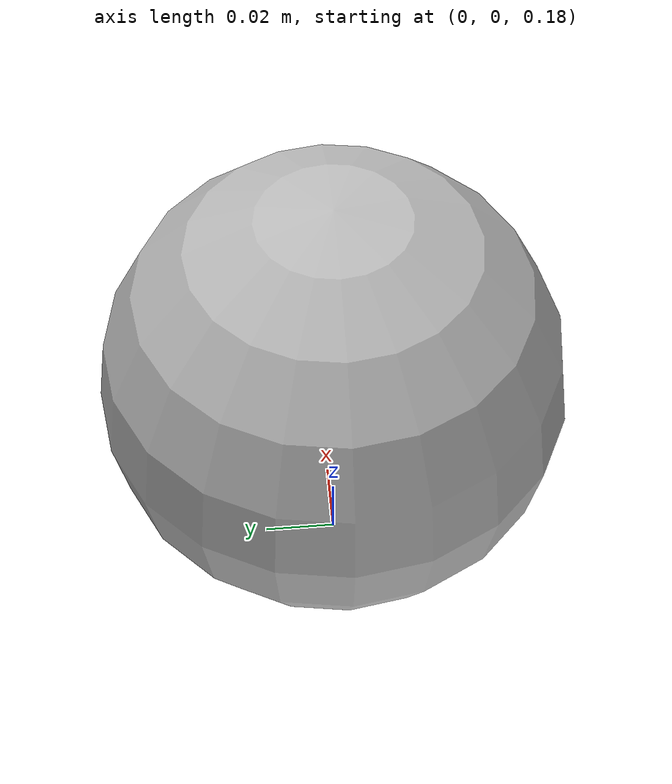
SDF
<?xml version="1.0"?>
<sdf version="1.6">
  <model name="sphere_obstacle">
    <static>true</static>  <!-- 让球固定不动 -->
    <pose>0 0 0.25 0 0 0</pose>  <!-- 默认位置 -->
    <link name="link">
      <collision name="collision">
        <geometry>
          <sphere>
            <radius>0.06</radius>  <!-- radius 0.2m -->
          </sphere>
        </geometry>
      </collision>
      <visual name="visual">
        <geometry>
          <sphere>
            <radius>0.06</radius>
          </sphere>
        </geometry>
      </visual>
    </link>
  </model>
</sdf>
